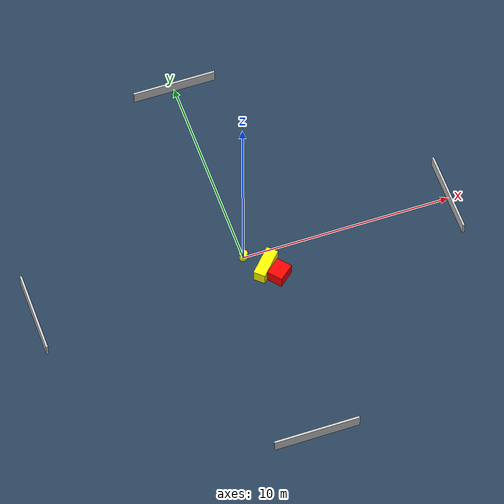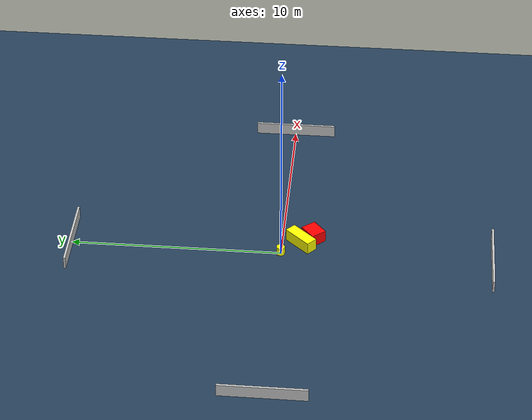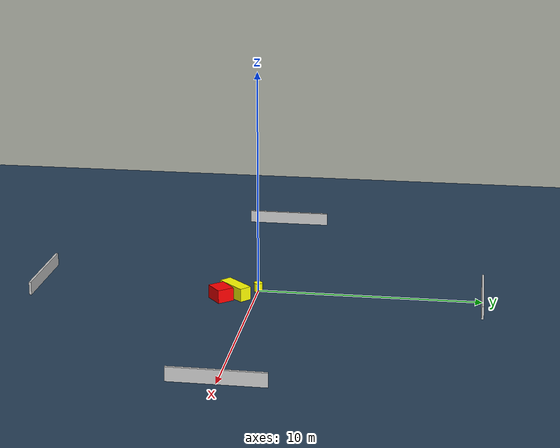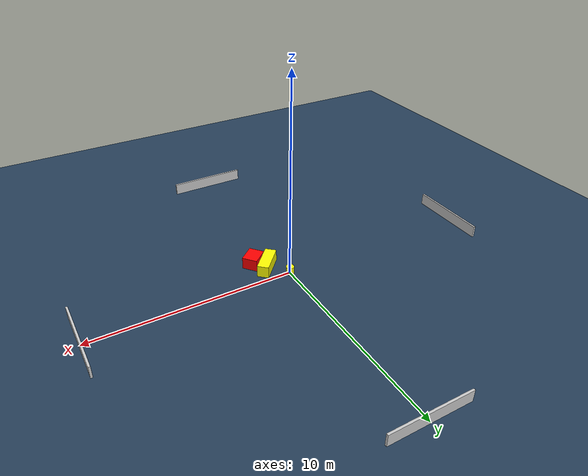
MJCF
<?xml version="1.0" ?>
<mujoco model="generated_environment">
  <option timestep="0.01" integrator="RK4" cone="elliptic"/>
  <default>
    <geom density="1"/>
  </default>
  <asset>
    <texture builtin="gradient" height="3072" name="skybox" rgb1="0.3 0.5 0.7" rgb2="0 0 0" type="skybox" width="512"/>
    <texture builtin="checker" height="300" name="groundplane" rgb1="0.2 0.3 0.4" rgb2="0.1 0.2 0.3" type="2d" width="300"/>
    <material name="groundplane" reflectance="0.2" texrepeat="5 5" texture="groundplane"/>
  </asset>
  <worldbody>
    <light dir="0 0 -1" directional="true" pos="0 0 1.5"/>
    <geom condim="3" friction="0.5 0.005 0.001" material="groundplane" name="floor" pos="0 0 0" size="0 0 0.05" type="plane"/>
    <body name="walls">
      <geom name="wall_1" condim="4" pos="-10.0 0.0 0.3" rgba="0.800000011920929 0.800000011920929 0.800000011920929 1.0" size="0.05 2.0 0.3" type="box"/>
      <geom name="wall_2" condim="4" pos="10.0 0.0 0.3" rgba="0.800000011920929 0.800000011920929 0.800000011920929 1.0" size="0.05 2.0 0.3" type="box"/>
      <geom name="wall_3" condim="4" pos="0.0 -10.0 0.3" rgba="0.800000011920929 0.800000011920929 0.800000011920929 1.0" size="2.0 0.05 0.3" type="box"/>
      <geom name="wall_4" condim="4" pos="0.0 10.0 0.3" rgba="0.800000011920929 0.800000011920929 0.800000011920929 1.0" size="2.0 0.05 0.3" type="box"/>
    </body>
    <body name="robot">
      <joint name="joint_x" type="slide" pos="0 0 0" axis="1 0 0"/>
      <joint name="joint_y" type="slide" pos="0 0 0" axis="0 1 0"/>
      <geom name="robot" type="cylinder" pos="0.0 0.0 0.2" size="0.2 0.2 0.0" mass="5.0" friction="1.0 0.005 0.0001" condim="4" rgba="1.0 1.0 0.0 1.0"/>
    </body>
    <body name="obstacle_1_movable">
      <geom name="obstacle_1_movable" condim="4" pos="0.77387367302605 -0.9070282741514978 0.3" euler="0 0 317.0740213408709" friction="0.0 0.005 0.001" rgba="1.0 1.0 0.0 1.0" size="0.28157231812998373 0.7517973388381483 0.3" type="box" mass="0.1"/>
      <joint type="free"/>
    </body>
    <body name="obstacle_2_static">
      <geom name="obstacle_2_static" condim="4" pos="1.229264426288391 -1.47589132981457 0.3" euler="0 0 39.695741078239394" friction="0.0 0.005 0.001" rgba="1.0 0.0 0.0 1.0" size="0.44899073425034114 0.37999953388466673 0.3" type="box"/>
    </body>
  </worldbody>
  <actuator>
    <motor name="actuator_x" joint="joint_x" gear="1" ctrlrange="-1 1"/>
    <motor name="actuator_y" joint="joint_y" gear="1" ctrlrange="-1 1"/>
  </actuator>
</mujoco>
